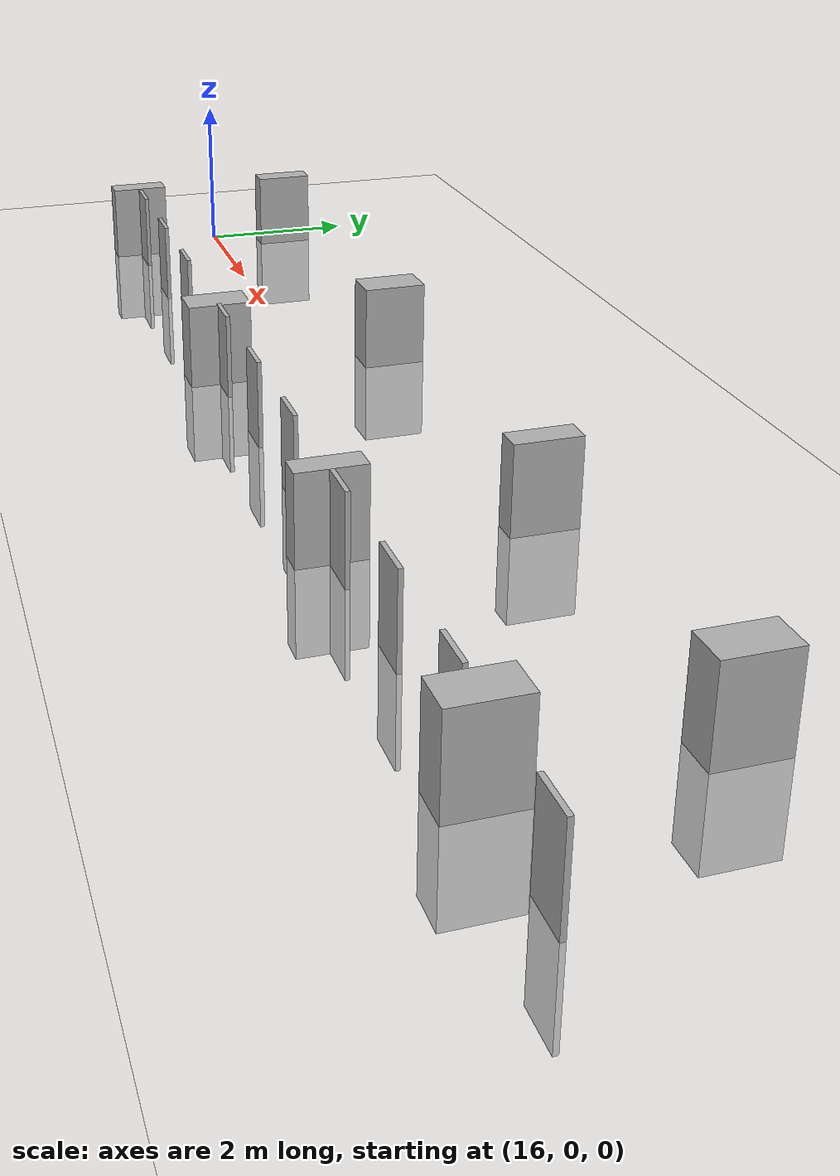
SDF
<sdf version="1.7">
 <world name="simple_corridor">
  <model name="ground_plane">
   <static>true</static>
   <link name="link">
    <collision name="collision">
     <geometry><plane><normal>0 0 1</normal><size>500 500</size></plane></geometry>
    </collision>
    <visual name="visual">
     <geometry><plane><normal>0 0 1</normal><size>500 500</size></plane></geometry>
     <material><ambient>1 1 1 1</ambient><diffuse>1 1 1 1</diffuse></material>
    </visual>
   </link>
  </model>
  <model name="column_small_right_4">
   <static>true</static>
   <pose>16.35 1 0 0 0 0</pose>
   <link name="link">
    <collision name="collision"><geometry><box><size>0.3 0.75 2.0</size></box></geometry></collision>
    <visual name="visual">
     <geometry><box><size>0.3 0.75 2.0</size></box></geometry>
     <material><diffuse>0.7 0.7 0.7 1</diffuse></material>
    </visual>
   </link>
  </model>
  <model name="column_large_right_5">
   <static>true</static>
   <pose>21.6 1 0 0 0 0</pose>
   <link name="link">
    <collision name="collision"><geometry><box><size>0.45 0.75 2.0</size></box></geometry></collision>
    <visual name="visual">
     <geometry><box><size>0.45 0.75 2.0</size></box></geometry>
     <material><diffuse>0.7 0.7 0.7 1</diffuse></material>
    </visual>
   </link>
  </model>
  <model name="column_small_right_6">
   <static>true</static>
   <pose>26.4 1 0 0 0 0</pose>
   <link name="link">
    <collision name="collision"><geometry><box><size>0.3 0.75 2.0</size></box></geometry></collision>
    <visual name="visual">
     <geometry><box><size>0.3 0.75 2.0</size></box></geometry>
     <material><diffuse>0.7 0.7 0.7 1</diffuse></material>
    </visual>
   </link>
  </model>
  <model name="column_large_right_7">
   <static>true</static>
   <pose>30.35 1 0 0 0 0</pose>
   <link name="link">
    <collision name="collision"><geometry><box><size>0.45 0.75 2.0</size></box></geometry></collision>
    <visual name="visual">
     <geometry><box><size>0.45 0.75 2.0</size></box></geometry>
     <material><diffuse>0.7 0.7 0.7 1</diffuse></material>
    </visual>
   </link>
  </model>
  <model name="ban_small_right_4">
   <static>true</static>
   <pose>16.35 -1.2 0 0 0 0</pose>
   <link name="link">
    <collision name="collision"><geometry><box><size>0.3 0.75 2.0</size></box></geometry></collision>
    <visual name="visual">
     <geometry><box><size>0.3 0.75 2.0</size></box></geometry>
     <material><diffuse>0.7 0.7 0.7 1</diffuse></material>
    </visual>
   </link>
  </model>
  <model name="ban_large_right_5">
   <static>true</static>
   <pose>21.6 -1.2 0 0 0 0</pose>
   <link name="link">
    <collision name="collision"><geometry><box><size>0.45 0.75 2.0</size></box></geometry></collision>
    <visual name="visual">
     <geometry><box><size>0.45 0.75 2.0</size></box></geometry>
     <material><diffuse>0.7 0.7 0.7 1</diffuse></material>
    </visual>
   </link>
  </model>
  <model name="ban_small_right_6">
   <static>true</static>
   <pose>26.4 -1.2 0 0 0 0</pose>
   <link name="link">
    <collision name="collision"><geometry><box><size>0.3 0.75 2.0</size></box></geometry></collision>
    <visual name="visual">
     <geometry><box><size>0.3 0.75 2.0</size></box></geometry>
     <material><diffuse>0.7 0.7 0.7 1</diffuse></material>
    </visual>
   </link>
  </model>
  <model name="ban_large_right_7">
   <static>true</static>
   <pose>30.35 -1.2 0 0 0 0</pose>
   <link name="link">
    <collision name="collision"><geometry><box><size>0.45 0.75 2.0</size></box></geometry></collision>
    <visual name="visual">
     <geometry><box><size>0.45 0.75 2.0</size></box></geometry>
     <material><diffuse>0.7 0.7 0.7 1</diffuse></material>
    </visual>
   </link>
  </model>
  <model name="bar_right_10">
   <static>true</static>
   <pose>16.8 -1.2 0 0 0 0</pose>
   <link name="link">
    <collision name="collision"><geometry><box><size>0.5 0.05 2.0</size></box></geometry></collision>
    <visual name="visual">
     <geometry><box><size>0.5 0.05 2.0</size></box></geometry>
     <material><diffuse>0.7 0.7 0.7 1</diffuse></material>
    </visual>
   </link>
  </model>
  <model name="bar_right_11">
   <static>true</static>
   <pose>18.3 -1.2 0 0 0 0</pose>
   <link name="link">
    <collision name="collision"><geometry><box><size>0.5 0.05 2.0</size></box></geometry></collision>
    <visual name="visual">
     <geometry><box><size>0.5 0.05 2.0</size></box></geometry>
     <material><diffuse>0.7 0.7 0.7 1</diffuse></material>
    </visual>
   </link>
  </model>
  <model name="bar_right_12">
   <static>true</static>
   <pose>19.8 -1.2 0 0 0 0</pose>
   <link name="link">
    <collision name="collision"><geometry><box><size>0.5 0.05 2.0</size></box></geometry></collision>
    <visual name="visual">
     <geometry><box><size>0.5 0.05 2.0</size></box></geometry>
     <material><diffuse>0.7 0.7 0.7 1</diffuse></material>
    </visual>
   </link>
  </model>
  <model name="bar_right_13">
   <static>true</static>
   <pose>22 -1.2 0 0 0 0</pose>
   <link name="link">
    <collision name="collision"><geometry><box><size>0.5 0.05 2.0</size></box></geometry></collision>
    <visual name="visual">
     <geometry><box><size>0.5 0.05 2.0</size></box></geometry>
     <material><diffuse>0.7 0.7 0.7 1</diffuse></material>
    </visual>
   </link>
  </model>
  <model name="bar_right_14">
   <static>true</static>
   <pose>23.5 -1.2 0 0 0 0</pose>
   <link name="link">
    <collision name="collision"><geometry><box><size>0.5 0.05 2.0</size></box></geometry></collision>
    <visual name="visual">
     <geometry><box><size>0.5 0.05 2.0</size></box></geometry>
     <material><diffuse>0.7 0.7 0.7 1</diffuse></material>
    </visual>
   </link>
  </model>
  <model name="bar_right_15">
   <static>true</static>
   <pose>25 -1.2 0 0 0 0</pose>
   <link name="link">
    <collision name="collision"><geometry><box><size>0.5 0.05 2.0</size></box></geometry></collision>
    <visual name="visual">
     <geometry><box><size>0.5 0.05 2.0</size></box></geometry>
     <material><diffuse>0.7 0.7 0.7 1</diffuse></material>
    </visual>
   </link>
  </model>
  <model name="bar_right_16">
   <static>true</static>
   <pose>26.8 -1.2 0 0 0 0</pose>
   <link name="link">
    <collision name="collision"><geometry><box><size>0.5 0.05 2.0</size></box></geometry></collision>
    <visual name="visual">
     <geometry><box><size>0.5 0.05 2.0</size></box></geometry>
     <material><diffuse>0.7 0.7 0.7 1</diffuse></material>
    </visual>
   </link>
  </model>
  <model name="bar_right_17">
   <static>true</static>
   <pose>28.3 -1.2 0 0 0 0</pose>
   <link name="link">
    <collision name="collision"><geometry><box><size>0.5 0.05 2.0</size></box></geometry></collision>
    <visual name="visual">
     <geometry><box><size>0.5 0.05 2.0</size></box></geometry>
     <material><diffuse>0.7 0.7 0.7 1</diffuse></material>
    </visual>
   </link>
  </model>
  <model name="bar_right_18">
   <static>true</static>
   <pose>29.8 -1.2 0 0 0 0</pose>
   <link name="link">
    <collision name="collision"><geometry><box><size>0.5 0.05 2.0</size></box></geometry></collision>
    <visual name="visual">
     <geometry><box><size>0.5 0.05 2.0</size></box></geometry>
     <material><diffuse>0.7 0.7 0.7 1</diffuse></material>
    </visual>
   </link>
  </model>
  <model name="bar_right_19">
   <static>true</static>
   <pose>31.7 -1.2 0 0 0 0</pose>
   <link name="link">
    <collision name="collision"><geometry><box><size>0.5 0.05 2.0</size></box></geometry></collision>
    <visual name="visual">
     <geometry><box><size>0.5 0.05 2.0</size></box></geometry>
     <material><diffuse>0.7 0.7 0.7 1</diffuse></material>
    </visual>
   </link>
  </model>
 </world>
</sdf>
